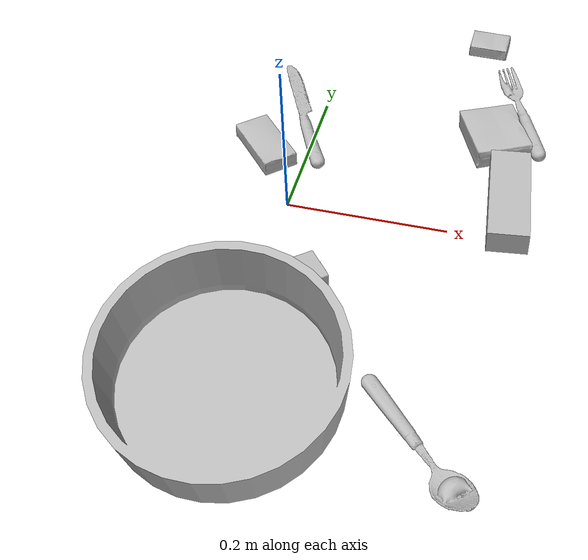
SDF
<sdf version="1.4">
  <world name="default">
    <light name="light1" type="point">
      <pose>0 0 1 0 0 0</pose>
      <diffuse>3 3 3 1</diffuse>
      <specular>3 3 3 1</specular>
    </light>
    <light name="light2" type="point">
      <pose>0 0.5 2 0 0 0</pose>
      <diffuse>1 1 1 1</diffuse>
      <specular>1 1 1 1</specular>
    </light>
    <light name="light3" type="point">
      <pose>0 0.5 2 0 0 0</pose>
      <diffuse>3 3 3 1</diffuse>
      <specular>3 3 3 1</specular>
    </light>
    <scene>
      <ambient>0.7 0.7 0.7</ambient>
    </scene>
    <model name="box11">
      <link name="link_box11">
        <collision name="default">
          <geometry>
            <mesh>
              <uri>model://sugar_box/collision_meshes/collision.obj</uri>
              <scale>0.5 0.5 0.5</scale>
            </mesh>
          </geometry>
          <surface>
            <friction>
              <ode>
                <mu>0.5</mu>
                <mu2>0.5</mu2>
              </ode>
            </friction>
          <contact>
        <ode>
            <max_vel>0</max_vel>
            <min_depth>0.0001</min_depth>
            <kp>1e8</kp>
        </ode>
    </contact></surface>
        </collision>
        <visual name="default">
          <geometry>
            <mesh>
              <uri>model://sugar_box/visual_meshes/visual.dae</uri>
              <scale>0.5 0.5 0.5</scale>
            </mesh>
          </geometry>
        </visual>
        <inertial>
          <mass>0.0727815181016922</mass>
          <pose>0.0005171863595023751 1.924554817378521e-05 -0.00018182402709499002 -0.0004046263004245651 0.001050663405794887 0.002615379021776999</pose>
          <inertia>
            <ixx>1.5160335e-05</ixx>
            <iyy>4.900132e-05</iyy>
            <izz>5.8660433e-05</izz>
            <ixy>0</ixy>
            <ixz>0</ixz>
            <iyz>0</iyz>
          </inertia>
        </inertial>
      </link>
      <pose>-0.05379319563508034 0.0921868085861206 0.011399305425584316 0.0007759485182437921 -0.023432892968303465 2.305669168160462</pose>
    </model>
    <model name="box12">
      <link name="link_box12">
        <collision name="default">
          <geometry>
            <mesh>
              <uri>model://gelatin_box/collision_meshes/collision.obj</uri>
              <scale>1.0 1.0 1.0</scale>
            </mesh>
          </geometry>
          <surface>
            <friction>
              <ode>
                <mu>0.5</mu>
                <mu2>0.5</mu2>
              </ode>
            </friction>
          <contact>
        <ode>
            <max_vel>0</max_vel>
            <min_depth>0.0001</min_depth>
            <kp>1e8</kp>
        </ode>
    </contact></surface>
        </collision>
        <visual name="default">
          <geometry>
            <mesh>
              <uri>model://gelatin_box/visual_meshes/visual.dae</uri>
              <scale>1.0 1.0 1.0</scale>
            </mesh>
          </geometry>
        </visual>
        <inertial>
          <mass>0.2761145234107971</mass>
          <pose>0.000431961816502735 0.00011156871187267825 -0.0003640321083366871 -0.0010503719804291966 -0.004755819155973465 0.01644055947187314</pose>
          <inertia>
            <ixx>0.00019491432</ixx>
            <iyy>0.00013922628</iyy>
            <izz>0.00029670302</izz>
            <ixy>0</ixy>
            <ixz>0</ixz>
            <iyz>0</iyz>
          </inertia>
        </inertial>
      </link>
      <pose>0.23102633655071259 0.17487139999866486 0.015168312937021255 0.005597094756841571 -0.007304556502594331 0.4317558826352073</pose>
    </model>
    <model name="box13">
      <link name="link_box13">
        <collision name="default">
          <geometry>
            <mesh>
              <uri>model://jenga/collision_meshes/collision.obj</uri>
              <scale>1.0 1.0 1.0</scale>
            </mesh>
          </geometry>
          <surface>
            <friction>
              <ode>
                <mu>0.5</mu>
                <mu2>0.5</mu2>
              </ode>
            </friction>
          <contact>
        <ode>
            <max_vel>0</max_vel>
            <min_depth>0.0001</min_depth>
            <kp>1e8</kp>
        </ode>
    </contact></surface>
        </collision>
        <visual name="default">
          <geometry>
            <mesh>
              <uri>model://jenga/visual_meshes/visual.dae</uri>
              <scale>1.0 1.0 1.0</scale>
            </mesh>
          </geometry>
        </visual>
        <inertial>
          <mass>0.30891793966293335</mass>
          <pose>-2.502855807051674e-07 -0.0001025000965455547 -4.0923401684267446e-05 0.0 -7.34215461761844e-07 0.0</pose>
          <inertia>
            <ixx>8.548509e-05</ixx>
            <iyy>0.00057924463</iyy>
            <izz>0.0006183929</izz>
            <ixy>0</ixy>
            <ixz>0</ixz>
            <iyz>0</iyz>
          </inertia>
        </inertial>
      </link>
      <pose>0.2657359540462494 0.05596026033163071 0.01499999687075615 2.0357686631249483e-08 -2.2831853971419525e-09 -1.455756542155446</pose>
    </model>
    <model name="box21">
      <link name="link_box21">
        <collision name="default">
          <geometry>
            <mesh>
              <uri>model://pudding_box/collision_meshes/collision.obj</uri>
              <scale>0.5 0.5 0.5</scale>
            </mesh>
          </geometry>
          <surface>
            <friction>
              <ode>
                <mu>0.5</mu>
                <mu2>0.5</mu2>
              </ode>
            </friction>
          <contact>
        <ode>
            <max_vel>0</max_vel>
            <min_depth>0.0001</min_depth>
            <kp>1e8</kp>
        </ode>
    </contact></surface>
        </collision>
        <visual name="default">
          <geometry>
            <mesh>
              <uri>model://pudding_box/visual_meshes/visual.dae</uri>
              <scale>0.5 0.5 0.5</scale>
            </mesh>
          </geometry>
        </visual>
        <inertial>
          <mass>0.049023520201444626</mass>
          <pose>0.0002447411243338138 0.00040339428232982755 -0.0002594413817860186 0.005213100395594636 -0.006603798704538055 0.020079825164231697</pose>
          <inertia>
            <ixx>1.3854642e-05</ixx>
            <iyy>9.321502e-06</iyy>
            <izz>2.046e-05</izz>
            <ixy>0</ixy>
            <ixz>0</ixz>
            <iyz>0</iyz>
          </inertia>
        </inertial>
      </link>
      <pose>0.026518763974308968 -0.23187868297100067 0.009862901642918587 0.02234869424198564 -0.01139163168302425 0.5493674047169704</pose>
    </model>
    <model name="box22">
      <link name="link_box22">
        <collision name="default">
          <geometry>
            <mesh>
              <uri>model://wood_block/collision_meshes/collision.obj</uri>
              <scale>0.5 0.5 0.5</scale>
            </mesh>
          </geometry>
          <surface>
            <friction>
              <ode>
                <mu>0.5</mu>
                <mu2>0.5</mu2>
              </ode>
            </friction>
          <contact>
        <ode>
            <max_vel>0</max_vel>
            <min_depth>0.0001</min_depth>
            <kp>1e8</kp>
        </ode>
    </contact></surface>
        </collision>
        <visual name="default">
          <geometry>
            <mesh>
              <uri>model://wood_block/visual_meshes/visual.dae</uri>
              <scale>0.5 0.5 0.5</scale>
            </mesh>
          </geometry>
        </visual>
        <inertial>
          <mass>0.3074011206626892</mass>
          <pose>-2.9066577553749084e-06 -0.000285404734313488 0.00013204291462898254 -0.05220975528717129 -0.005192695583989696 -0.0068613793241849635</pose>
          <inertia>
            <ixx>0.00010283729</ixx>
            <iyy>0.00032486304</iyy>
            <izz>0.0003236479</izz>
            <ixy>0</ixy>
            <ixz>0</ixz>
            <iyz>0</iyz>
          </inertia>
        </inertial>
      </link>
      <pose>0.03630106523633003 -0.1584402620792389 0.022678351029753685 -0.00011266626607477256 0.008672928005827517 -2.449696625900062</pose>
    </model>
    <model name="box23">
      <link name="link_box23">
        <collision name="default">
          <geometry>
            <mesh>
              <uri>model://cracker_box/collision_meshes/collision.obj</uri>
              <scale>0.25 0.25 0.25</scale>
            </mesh>
          </geometry>
          <surface>
            <friction>
              <ode>
                <mu>0.5</mu>
                <mu2>0.5</mu2>
              </ode>
            </friction>
          <contact>
        <ode>
            <max_vel>0</max_vel>
            <min_depth>0.0001</min_depth>
            <kp>1e8</kp>
        </ode>
    </contact></surface>
        </collision>
        <visual name="default">
          <geometry>
            <mesh>
              <uri>model://cracker_box/visual_meshes/visual.dae</uri>
              <scale>0.25 0.25 0.25</scale>
            </mesh>
          </geometry>
        </visual>
        <inertial>
          <mass>0.04833315312862396</mass>
          <pose>0.00023660357692278922 6.358561950037256e-05 -0.00042573834070935845 -0.0003162077466025917 -0.011106490531569568 0.002546795235651085</pose>
          <inertia>
            <ixx>7.683624e-06</ixx>
            <iyy>1.268717e-05</iyy>
            <izz>1.8105757e-05</izz>
            <ixy>0</ixy>
            <ixz>0</ixz>
            <iyz>0</iyz>
          </inertia>
        </inertial>
      </link>
      <pose>0.19458624720573425 0.3790522813796997 0.009096029214560986 -0.014050537163044876 -0.005016670799593899 3.13180283020314</pose>
    </model>
    <model name="plate1">
      <link name="link_plate1">
        <collision name="default">
          <geometry>
            <mesh>
              <uri>model://pan_tefal/collision_meshes/collision.obj</uri>
              <scale>1.0 1.0 1.0</scale>
            </mesh>
          </geometry>
          <surface>
            <friction>
              <ode>
                <mu>0.5</mu>
                <mu2>0.5</mu2>
              </ode>
            </friction>
          <contact>
        <ode>
            <max_vel>0</max_vel>
            <min_depth>0.0001</min_depth>
            <kp>1e8</kp>
        </ode>
    </contact></surface>
        </collision>
        <visual name="default">
          <geometry>
            <mesh>
              <uri>model://pan_tefal/visual_meshes/visual.dae</uri>
              <scale>1.0 1.0 1.0</scale>
            </mesh>
          </geometry>
        </visual>
        <inertial>
          <mass>1.5598481893539429</mass>
          <pose>-0.0001800245518097654 3.279111842857674e-05 -0.008514934219419956 0.0008190275877392404 -0.0003301333888364595 -0.33185859522575717</pose>
          <inertia>
            <ixx>0.010767555</ixx>
            <iyy>0.010836974</iyy>
            <izz>0.019820997</izz>
            <ixy>0</ixy>
            <ixz>0</ixz>
            <iyz>0</iyz>
          </inertia>
        </inertial>
      </link>
      <pose>0.022788725793361664 -0.3114725649356842 0.06115167587995529 0.178970919400053 0.11095880459197653 -0.40466985047970977</pose>
    </model>
    <model name="silverware1">
      <link name="link_silverware1">
        <collision name="default">
          <geometry>
            <mesh>
              <uri>model://fork/collision_meshes/collision.obj</uri>
              <scale>1.0 1.0 1.0</scale>
            </mesh>
          </geometry>
          <surface>
            <friction>
              <ode>
                <mu>0.5</mu>
                <mu2>0.5</mu2>
              </ode>
            </friction>
          <contact>
        <ode>
            <max_vel>0</max_vel>
            <min_depth>0.0001</min_depth>
            <kp>1e8</kp>
        </ode>
    </contact></surface>
        </collision>
        <visual name="default">
          <geometry>
            <mesh>
              <uri>model://fork/visual_meshes/visual.dae</uri>
              <scale>1.0 1.0 1.0</scale>
            </mesh>
          </geometry>
        </visual>
        <inertial>
          <mass>0.024598950520157814</mass>
          <pose>-0.029570043087005615 0.0004658824182115495 0.0003218861820641905 -0.013552328184634912 -0.010977839901754499 0.014453902526732686</pose>
          <inertia>
            <ixx>8.623325e-07</ixx>
            <iyy>6.422079e-05</iyy>
            <izz>6.460647e-05</izz>
            <ixy>0</ixy>
            <ixz>0</ixz>
            <iyz>0</iyz>
          </inertia>
        </inertial>
      </link>
      <pose>0.2592984139919281 0.24001136422157288 0.0053454115986824036 -0.05277748143483825 0.044601693841847305 1.929917139566334</pose>
    </model>
    <model name="silverware2">
      <link name="link_silverware2">
        <collision name="default">
          <geometry>
            <mesh>
              <uri>model://knife/collision_meshes/collision.obj</uri>
              <scale>1.0 1.0 1.0</scale>
            </mesh>
          </geometry>
          <surface>
            <friction>
              <ode>
                <mu>0.5</mu>
                <mu2>0.5</mu2>
              </ode>
            </friction>
          <contact>
        <ode>
            <max_vel>0</max_vel>
            <min_depth>0.0001</min_depth>
            <kp>1e8</kp>
        </ode>
    </contact></surface>
        </collision>
        <visual name="default">
          <geometry>
            <mesh>
              <uri>model://knife/visual_meshes/visual.dae</uri>
              <scale>1.0 1.0 1.0</scale>
            </mesh>
          </geometry>
        </visual>
        <inertial>
          <mass>0.03473280370235443</mass>
          <pose>-0.02378525584936142 0.0015275126788765192 5.062021955382079e-05 0.0730594717304457 0.017248417183571667 -0.007409821049452296</pose>
          <inertia>
            <ixx>9.858578e-07</ixx>
            <iyy>0.00013343782</iyy>
            <izz>0.00013375531</izz>
            <ixy>0</ixy>
            <ixz>0</ixz>
            <iyz>0</iyz>
          </inertia>
        </inertial>
      </link>
      <pose>-0.022673722356557846 0.16850289702415466 0.007946520112454891 -0.02392474021858507 -0.014542506792968297 2.0109833473686884</pose>
    </model>
    <model name="silverware3">
      <link name="link_silverware3">
        <collision name="default">
          <geometry>
            <mesh>
              <uri>model://spoon/collision_meshes/collision.obj</uri>
              <scale>1.0 1.0 1.0</scale>
            </mesh>
          </geometry>
          <surface>
            <friction>
              <ode>
                <mu>0.5</mu>
                <mu2>0.5</mu2>
              </ode>
            </friction>
          <contact>
        <ode>
            <max_vel>0</max_vel>
            <min_depth>0.0001</min_depth>
            <kp>1e8</kp>
        </ode>
    </contact></surface>
        </collision>
        <visual name="default">
          <geometry>
            <mesh>
              <uri>model://spoon/visual_meshes/visual.dae</uri>
              <scale>1.0 1.0 1.0</scale>
            </mesh>
          </geometry>
        </visual>
        <inertial>
          <mass>0.02618301659822464</mass>
          <pose>-0.0055263168178498745 -0.00160341733135283 -0.0007271658978424966 0.035216710647368914 -0.039065848798616645 0.0061506127138874515</pose>
          <inertia>
            <ixx>1.4563418e-06</ixx>
            <iyy>9.96255e-05</iyy>
            <izz>0.000100343714</izz>
            <ixy>0</ixy>
            <ixz>0</ixz>
            <iyz>0</iyz>
          </inertia>
        </inertial>
      </link>
      <pose>0.2258031666278839 -0.3126961290836334 0.008385265246033669 0.006731643133462992 0.026892988998345836 -0.7934319013783502</pose>
    </model>
  <physics type="ode">
      <max_contacts>50</max_contacts>
      <ode>
        <solver>
          <type>quick</type>
          <iters>75</iters>
        </solver>
        <constraints>
          <contact_max_correcting_vel>0</contact_max_correcting_vel>
          <contact_surface_layer>0</contact_surface_layer>
        </constraints>
      </ode>
    </physics></world>
</sdf>
